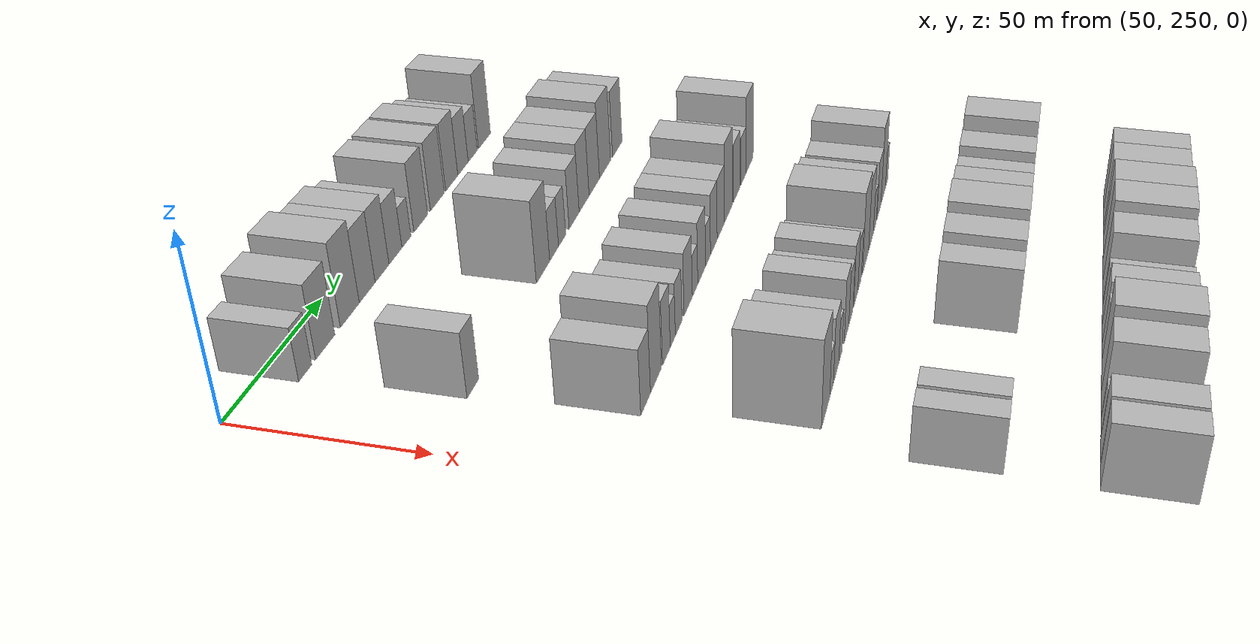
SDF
<sdf version="1.6">
 <world name="default">
  <model name="building_105">
   <static>1</static>
   <pose>50.0000 270.8013 0 0.000000 0.000000 0.000000</pose>
   <link name="link">
    <pose>0 0 7.50 0 0 0</pose>
    <collision name="collision"><geometry><box><size>20.0000 6.6210 15.0000</size></box></geometry></collision>
    <visual name="visual">
     <cast_shadows>0</cast_shadows>
     <geometry><box><size>20.0000 6.6210 15.0000</size></box></geometry>
     <material>
      <script>
       <uri>model://HANNAS_wall/materials/scripts</uri>
       <uri>model://HANNAS_wall/materials/textures</uri>
       <name>vrc/HANNAS_wall</name>
      </script>
     </material>
    </visual>
   </link>
  </model>
  <model name="building_106">
   <static>1</static>
   <pose>50.0000 281.2598 0 0.000000 0.000000 0.000000</pose>
   <link name="link">
    <pose>0 0 10.50 0 0 0</pose>
    <collision name="collision"><geometry><box><size>20.0000 10.2959 21.0000</size></box></geometry></collision>
    <visual name="visual">
     <cast_shadows>0</cast_shadows>
     <geometry><box><size>20.0000 10.2959 21.0000</size></box></geometry>
     <material>
      <script>
       <uri>model://HANNAS_wall/materials/scripts</uri>
       <uri>model://HANNAS_wall/materials/textures</uri>
       <name>vrc/HANNAS_wall</name>
      </script>
     </material>
    </visual>
   </link>
  </model>
  <model name="building_107">
   <static>1</static>
   <pose>50.0000 294.7778 0 0.000000 0.000000 0.000000</pose>
   <link name="link">
    <pose>0 0 12.00 0 0 0</pose>
    <collision name="collision"><geometry><box><size>20.0000 10.7402 24.0000</size></box></geometry></collision>
    <visual name="visual">
     <cast_shadows>0</cast_shadows>
     <geometry><box><size>20.0000 10.7402 24.0000</size></box></geometry>
     <material>
      <script>
       <uri>model://HANNAS_wall/materials/scripts</uri>
       <uri>model://HANNAS_wall/materials/textures</uri>
       <name>vrc/HANNAS_wall</name>
      </script>
     </material>
    </visual>
   </link>
  </model>
  <model name="building_108">
   <static>1</static>
   <pose>50.0000 304.8443 0 0.000000 0.000000 0.000000</pose>
   <link name="link">
    <pose>0 0 10.50 0 0 0</pose>
    <collision name="collision"><geometry><box><size>20.0000 9.3929 21.0000</size></box></geometry></collision>
    <visual name="visual">
     <cast_shadows>0</cast_shadows>
     <geometry><box><size>20.0000 9.3929 21.0000</size></box></geometry>
     <material>
      <script>
       <uri>model://HANNAS_wall/materials/scripts</uri>
       <uri>model://HANNAS_wall/materials/textures</uri>
       <name>vrc/HANNAS_wall</name>
      </script>
     </material>
    </visual>
   </link>
  </model>
  <model name="building_109">
   <static>1</static>
   <pose>50.0000 313.8432 0 0.000000 0.000000 0.000000</pose>
   <link name="link">
    <pose>0 0 10.50 0 0 0</pose>
    <collision name="collision"><geometry><box><size>20.0000 8.6049 21.0000</size></box></geometry></collision>
    <visual name="visual">
     <cast_shadows>0</cast_shadows>
     <geometry><box><size>20.0000 8.6049 21.0000</size></box></geometry>
     <material>
      <script>
       <uri>model://HANNAS_wall/materials/scripts</uri>
       <uri>model://HANNAS_wall/materials/textures</uri>
       <name>vrc/HANNAS_wall</name>
      </script>
     </material>
    </visual>
   </link>
  </model>
  <model name="building_110">
   <static>1</static>
   <pose>50.0000 322.2952 0 0.000000 0.000000 0.000000</pose>
   <link name="link">
    <pose>0 0 9.00 0 0 0</pose>
    <collision name="collision"><geometry><box><size>20.0000 8.2990 18.0000</size></box></geometry></collision>
    <visual name="visual">
     <cast_shadows>0</cast_shadows>
     <geometry><box><size>20.0000 8.2990 18.0000</size></box></geometry>
     <material>
      <script>
       <uri>model://HANNAS_wall/materials/scripts</uri>
       <uri>model://HANNAS_wall/materials/textures</uri>
       <name>vrc/HANNAS_wall</name>
      </script>
     </material>
    </visual>
   </link>
  </model>
  <model name="building_111">
   <static>1</static>
   <pose>50.0000 329.4036 0 0.000000 0.000000 0.000000</pose>
   <link name="link">
    <pose>0 0 6.00 0 0 0</pose>
    <collision name="collision"><geometry><box><size>20.0000 5.9179 12.0000</size></box></geometry></collision>
    <visual name="visual">
     <cast_shadows>0</cast_shadows>
     <geometry><box><size>20.0000 5.9179 12.0000</size></box></geometry>
     <material>
      <script>
       <uri>model://HANNAS_wall/materials/scripts</uri>
       <uri>model://HANNAS_wall/materials/textures</uri>
       <name>vrc/HANNAS_wall</name>
      </script>
     </material>
    </visual>
   </link>
  </model>
  <model name="building_112">
   <static>1</static>
   <pose>50.0000 339.0854 0 0.000000 0.000000 0.000000</pose>
   <link name="link">
    <pose>0 0 10.50 0 0 0</pose>
    <collision name="collision"><geometry><box><size>20.0000 9.4457 21.0000</size></box></geometry></collision>
    <visual name="visual">
     <cast_shadows>0</cast_shadows>
     <geometry><box><size>20.0000 9.4457 21.0000</size></box></geometry>
     <material>
      <script>
       <uri>model://HANNAS_wall/materials/scripts</uri>
       <uri>model://HANNAS_wall/materials/textures</uri>
       <name>vrc/HANNAS_wall</name>
      </script>
     </material>
    </visual>
   </link>
  </model>
  <model name="building_113">
   <static>1</static>
   <pose>50.0000 350.8341 0 0.000000 0.000000 0.000000</pose>
   <link name="link">
    <pose>0 0 10.50 0 0 0</pose>
    <collision name="collision"><geometry><box><size>20.0000 10.0517 21.0000</size></box></geometry></collision>
    <visual name="visual">
     <cast_shadows>0</cast_shadows>
     <geometry><box><size>20.0000 10.0517 21.0000</size></box></geometry>
     <material>
      <script>
       <uri>model://HANNAS_wall/materials/scripts</uri>
       <uri>model://HANNAS_wall/materials/textures</uri>
       <name>vrc/HANNAS_wall</name>
      </script>
     </material>
    </visual>
   </link>
  </model>
  <model name="building_114">
   <static>1</static>
   <pose>50.0000 361.4391 0 0.000000 0.000000 0.000000</pose>
   <link name="link">
    <pose>0 0 10.50 0 0 0</pose>
    <collision name="collision"><geometry><box><size>20.0000 9.1581 21.0000</size></box></geometry></collision>
    <visual name="visual">
     <cast_shadows>0</cast_shadows>
     <geometry><box><size>20.0000 9.1581 21.0000</size></box></geometry>
     <material>
      <script>
       <uri>model://HANNAS_wall/materials/scripts</uri>
       <uri>model://HANNAS_wall/materials/textures</uri>
       <name>vrc/HANNAS_wall</name>
      </script>
     </material>
    </visual>
   </link>
  </model>
  <model name="building_115">
   <static>1</static>
   <pose>50.0000 370.0794 0 0.000000 0.000000 0.000000</pose>
   <link name="link">
    <pose>0 0 9.00 0 0 0</pose>
    <collision name="collision"><geometry><box><size>20.0000 8.1225 18.0000</size></box></geometry></collision>
    <visual name="visual">
     <cast_shadows>0</cast_shadows>
     <geometry><box><size>20.0000 8.1225 18.0000</size></box></geometry>
     <material>
      <script>
       <uri>model://HANNAS_wall/materials/scripts</uri>
       <uri>model://HANNAS_wall/materials/textures</uri>
       <name>vrc/HANNAS_wall</name>
      </script>
     </material>
    </visual>
   </link>
  </model>
  <model name="building_116">
   <static>1</static>
   <pose>50.0000 377.7394 0 0.000000 0.000000 0.000000</pose>
   <link name="link">
    <pose>0 0 7.50 0 0 0</pose>
    <collision name="collision"><geometry><box><size>20.0000 7.1975 15.0000</size></box></geometry></collision>
    <visual name="visual">
     <cast_shadows>0</cast_shadows>
     <geometry><box><size>20.0000 7.1975 15.0000</size></box></geometry>
     <material>
      <script>
       <uri>model://HANNAS_wall/materials/scripts</uri>
       <uri>model://HANNAS_wall/materials/textures</uri>
       <name>vrc/HANNAS_wall</name>
      </script>
     </material>
    </visual>
   </link>
  </model>
  <model name="building_117">
   <static>1</static>
   <pose>50.0000 387.3752 0 0.000000 0.000000 0.000000</pose>
   <link name="link">
    <pose>0 0 12.00 0 0 0</pose>
    <collision name="collision"><geometry><box><size>20.0000 10.0742 24.0000</size></box></geometry></collision>
    <visual name="visual">
     <cast_shadows>0</cast_shadows>
     <geometry><box><size>20.0000 10.0742 24.0000</size></box></geometry>
     <material>
      <script>
       <uri>model://HANNAS_wall/materials/scripts</uri>
       <uri>model://HANNAS_wall/materials/textures</uri>
       <name>vrc/HANNAS_wall</name>
      </script>
     </material>
    </visual>
   </link>
  </model>
  <model name="building_230">
   <static>1</static>
   <pose>90.0000 273.5244 0 0.000000 0.000000 0.000000</pose>
   <link name="link">
    <pose>0 0 9.00 0 0 0</pose>
    <collision name="collision"><geometry><box><size>20.0000 7.3541 18.0000</size></box></geometry></collision>
    <visual name="visual">
     <cast_shadows>0</cast_shadows>
     <geometry><box><size>20.0000 7.3541 18.0000</size></box></geometry>
     <material>
      <script>
       <uri>model://HANNAS_wall/materials/scripts</uri>
       <uri>model://HANNAS_wall/materials/textures</uri>
       <name>vrc/HANNAS_wall</name>
      </script>
     </material>
    </visual>
   </link>
  </model>
  <model name="building_231">
   <static>1</static>
   <pose>90.0000 323.1461 0 0.000000 0.000000 0.000000</pose>
   <link name="link">
    <pose>0 0 12.00 0 0 0</pose>
    <collision name="collision"><geometry><box><size>20.0000 10.6297 24.0000</size></box></geometry></collision>
    <visual name="visual">
     <cast_shadows>0</cast_shadows>
     <geometry><box><size>20.0000 10.6297 24.0000</size></box></geometry>
     <material>
      <script>
       <uri>model://HANNAS_wall/materials/scripts</uri>
       <uri>model://HANNAS_wall/materials/textures</uri>
       <name>vrc/HANNAS_wall</name>
      </script>
     </material>
    </visual>
   </link>
  </model>
  <model name="building_232">
   <static>1</static>
   <pose>90.0000 332.1004 0 0.000000 0.000000 0.000000</pose>
   <link name="link">
    <pose>0 0 7.50 0 0 0</pose>
    <collision name="collision"><geometry><box><size>20.0000 7.2789 15.0000</size></box></geometry></collision>
    <visual name="visual">
     <cast_shadows>0</cast_shadows>
     <geometry><box><size>20.0000 7.2789 15.0000</size></box></geometry>
     <material>
      <script>
       <uri>model://HANNAS_wall/materials/scripts</uri>
       <uri>model://HANNAS_wall/materials/textures</uri>
       <name>vrc/HANNAS_wall</name>
      </script>
     </material>
    </visual>
   </link>
  </model>
  <model name="building_233">
   <static>1</static>
   <pose>90.0000 338.7632 0 0.000000 0.000000 0.000000</pose>
   <link name="link">
    <pose>0 0 7.50 0 0 0</pose>
    <collision name="collision"><geometry><box><size>20.0000 6.0467 15.0000</size></box></geometry></collision>
    <visual name="visual">
     <cast_shadows>0</cast_shadows>
     <geometry><box><size>20.0000 6.0467 15.0000</size></box></geometry>
     <material>
      <script>
       <uri>model://HANNAS_wall/materials/scripts</uri>
       <uri>model://HANNAS_wall/materials/textures</uri>
       <name>vrc/HANNAS_wall</name>
      </script>
     </material>
    </visual>
   </link>
  </model>
  <model name="building_234">
   <static>1</static>
   <pose>90.0000 349.2207 0 0.000000 0.000000 0.000000</pose>
   <link name="link">
    <pose>0 0 9.00 0 0 0</pose>
    <collision name="collision"><geometry><box><size>20.0000 8.8682 18.0000</size></box></geometry></collision>
    <visual name="visual">
     <cast_shadows>0</cast_shadows>
     <geometry><box><size>20.0000 8.8682 18.0000</size></box></geometry>
     <material>
      <script>
       <uri>model://HANNAS_wall/materials/scripts</uri>
       <uri>model://HANNAS_wall/materials/textures</uri>
       <name>vrc/HANNAS_wall</name>
      </script>
     </material>
    </visual>
   </link>
  </model>
  <model name="building_235">
   <static>1</static>
   <pose>90.0000 358.2256 0 0.000000 0.000000 0.000000</pose>
   <link name="link">
    <pose>0 0 10.50 0 0 0</pose>
    <collision name="collision"><geometry><box><size>20.0000 9.1416 21.0000</size></box></geometry></collision>
    <visual name="visual">
     <cast_shadows>0</cast_shadows>
     <geometry><box><size>20.0000 9.1416 21.0000</size></box></geometry>
     <material>
      <script>
       <uri>model://HANNAS_wall/materials/scripts</uri>
       <uri>model://HANNAS_wall/materials/textures</uri>
       <name>vrc/HANNAS_wall</name>
      </script>
     </material>
    </visual>
   </link>
  </model>
  <model name="building_236">
   <static>1</static>
   <pose>90.0000 367.7787 0 0.000000 0.000000 0.000000</pose>
   <link name="link">
    <pose>0 0 10.50 0 0 0</pose>
    <collision name="collision"><geometry><box><size>20.0000 9.9645 21.0000</size></box></geometry></collision>
    <visual name="visual">
     <cast_shadows>0</cast_shadows>
     <geometry><box><size>20.0000 9.9645 21.0000</size></box></geometry>
     <material>
      <script>
       <uri>model://HANNAS_wall/materials/scripts</uri>
       <uri>model://HANNAS_wall/materials/textures</uri>
       <name>vrc/HANNAS_wall</name>
      </script>
     </material>
    </visual>
   </link>
  </model>
  <model name="building_237">
   <static>1</static>
   <pose>90.0000 378.2709 0 0.000000 0.000000 0.000000</pose>
   <link name="link">
    <pose>0 0 12.00 0 0 0</pose>
    <collision name="collision"><geometry><box><size>20.0000 11.0199 24.0000</size></box></geometry></collision>
    <visual name="visual">
     <cast_shadows>0</cast_shadows>
     <geometry><box><size>20.0000 11.0199 24.0000</size></box></geometry>
     <material>
      <script>
       <uri>model://HANNAS_wall/materials/scripts</uri>
       <uri>model://HANNAS_wall/materials/textures</uri>
       <name>vrc/HANNAS_wall</name>
      </script>
     </material>
    </visual>
   </link>
  </model>
  <model name="building_238">
   <static>1</static>
   <pose>90.0000 390.7576 0 0.000000 0.000000 0.000000</pose>
   <link name="link">
    <pose>0 0 10.50 0 0 0</pose>
    <collision name="collision"><geometry><box><size>20.0000 9.9534 21.0000</size></box></geometry></collision>
    <visual name="visual">
     <cast_shadows>0</cast_shadows>
     <geometry><box><size>20.0000 9.9534 21.0000</size></box></geometry>
     <material>
      <script>
       <uri>model://HANNAS_wall/materials/scripts</uri>
       <uri>model://HANNAS_wall/materials/textures</uri>
       <name>vrc/HANNAS_wall</name>
      </script>
     </material>
    </visual>
   </link>
  </model>
  <model name="building_358">
   <static>1</static>
   <pose>130.0000 276.2839 0 0.000000 0.000000 0.000000</pose>
   <link name="link">
    <pose>0 0 9.00 0 0 0</pose>
    <collision name="collision"><geometry><box><size>20.0000 8.2934 18.0000</size></box></geometry></collision>
    <visual name="visual">
     <cast_shadows>0</cast_shadows>
     <geometry><box><size>20.0000 8.2934 18.0000</size></box></geometry>
     <material>
      <script>
       <uri>model://HANNAS_wall/materials/scripts</uri>
       <uri>model://HANNAS_wall/materials/textures</uri>
       <name>vrc/HANNAS_wall</name>
      </script>
     </material>
    </visual>
   </link>
  </model>
  <model name="building_359">
   <static>1</static>
   <pose>130.0000 285.2627 0 0.000000 0.000000 0.000000</pose>
   <link name="link">
    <pose>0 0 12.00 0 0 0</pose>
    <collision name="collision"><geometry><box><size>20.0000 9.6642 24.0000</size></box></geometry></collision>
    <visual name="visual">
     <cast_shadows>0</cast_shadows>
     <geometry><box><size>20.0000 9.6642 24.0000</size></box></geometry>
     <material>
      <script>
       <uri>model://HANNAS_wall/materials/scripts</uri>
       <uri>model://HANNAS_wall/materials/textures</uri>
       <name>vrc/HANNAS_wall</name>
      </script>
     </material>
    </visual>
   </link>
  </model>
  <model name="building_360">
   <static>1</static>
   <pose>130.0000 294.7031 0 0.000000 0.000000 0.000000</pose>
   <link name="link">
    <pose>0 0 9.00 0 0 0</pose>
    <collision name="collision"><geometry><box><size>20.0000 7.2167 18.0000</size></box></geometry></collision>
    <visual name="visual">
     <cast_shadows>0</cast_shadows>
     <geometry><box><size>20.0000 7.2167 18.0000</size></box></geometry>
     <material>
      <script>
       <uri>model://HANNAS_wall/materials/scripts</uri>
       <uri>model://HANNAS_wall/materials/textures</uri>
       <name>vrc/HANNAS_wall</name>
      </script>
     </material>
    </visual>
   </link>
  </model>
  <model name="building_361">
   <static>1</static>
   <pose>130.0000 300.7441 0 0.000000 0.000000 0.000000</pose>
   <link name="link">
    <pose>0 0 6.00 0 0 0</pose>
    <collision name="collision"><geometry><box><size>20.0000 4.8653 12.0000</size></box></geometry></collision>
    <visual name="visual">
     <cast_shadows>0</cast_shadows>
     <geometry><box><size>20.0000 4.8653 12.0000</size></box></geometry>
     <material>
      <script>
       <uri>model://HANNAS_wall/materials/scripts</uri>
       <uri>model://HANNAS_wall/materials/textures</uri>
       <name>vrc/HANNAS_wall</name>
      </script>
     </material>
    </visual>
   </link>
  </model>
  <model name="building_362">
   <static>1</static>
   <pose>130.0000 306.4596 0 0.000000 0.000000 0.000000</pose>
   <link name="link">
    <pose>0 0 7.50 0 0 0</pose>
    <collision name="collision"><geometry><box><size>20.0000 6.5658 15.0000</size></box></geometry></collision>
    <visual name="visual">
     <cast_shadows>0</cast_shadows>
     <geometry><box><size>20.0000 6.5658 15.0000</size></box></geometry>
     <material>
      <script>
       <uri>model://HANNAS_wall/materials/scripts</uri>
       <uri>model://HANNAS_wall/materials/textures</uri>
       <name>vrc/HANNAS_wall</name>
      </script>
     </material>
    </visual>
   </link>
  </model>
  <model name="building_363">
   <static>1</static>
   <pose>130.0000 316.0004 0 0.000000 0.000000 0.000000</pose>
   <link name="link">
    <pose>0 0 9.00 0 0 0</pose>
    <collision name="collision"><geometry><box><size>20.0000 8.5158 18.0000</size></box></geometry></collision>
    <visual name="visual">
     <cast_shadows>0</cast_shadows>
     <geometry><box><size>20.0000 8.5158 18.0000</size></box></geometry>
     <material>
      <script>
       <uri>model://HANNAS_wall/materials/scripts</uri>
       <uri>model://HANNAS_wall/materials/textures</uri>
       <name>vrc/HANNAS_wall</name>
      </script>
     </material>
    </visual>
   </link>
  </model>
  <model name="building_364">
   <static>1</static>
   <pose>130.0000 323.1467 0 0.000000 0.000000 0.000000</pose>
   <link name="link">
    <pose>0 0 6.00 0 0 0</pose>
    <collision name="collision"><geometry><box><size>20.0000 5.7768 12.0000</size></box></geometry></collision>
    <visual name="visual">
     <cast_shadows>0</cast_shadows>
     <geometry><box><size>20.0000 5.7768 12.0000</size></box></geometry>
     <material>
      <script>
       <uri>model://HANNAS_wall/materials/scripts</uri>
       <uri>model://HANNAS_wall/materials/textures</uri>
       <name>vrc/HANNAS_wall</name>
      </script>
     </material>
    </visual>
   </link>
  </model>
  <model name="building_365">
   <static>1</static>
   <pose>130.0000 330.3288 0 0.000000 0.000000 0.000000</pose>
   <link name="link">
    <pose>0 0 9.00 0 0 0</pose>
    <collision name="collision"><geometry><box><size>20.0000 8.5874 18.0000</size></box></geometry></collision>
    <visual name="visual">
     <cast_shadows>0</cast_shadows>
     <geometry><box><size>20.0000 8.5874 18.0000</size></box></geometry>
     <material>
      <script>
       <uri>model://HANNAS_wall/materials/scripts</uri>
       <uri>model://HANNAS_wall/materials/textures</uri>
       <name>vrc/HANNAS_wall</name>
      </script>
     </material>
    </visual>
   </link>
  </model>
  <model name="building_366">
   <static>1</static>
   <pose>130.0000 337.3484 0 0.000000 0.000000 0.000000</pose>
   <link name="link">
    <pose>0 0 6.00 0 0 0</pose>
    <collision name="collision"><geometry><box><size>20.0000 5.4519 12.0000</size></box></geometry></collision>
    <visual name="visual">
     <cast_shadows>0</cast_shadows>
     <geometry><box><size>20.0000 5.4519 12.0000</size></box></geometry>
     <material>
      <script>
       <uri>model://HANNAS_wall/materials/scripts</uri>
       <uri>model://HANNAS_wall/materials/textures</uri>
       <name>vrc/HANNAS_wall</name>
      </script>
     </material>
    </visual>
   </link>
  </model>
  <model name="building_367">
   <static>1</static>
   <pose>130.0000 343.9395 0 0.000000 0.000000 0.000000</pose>
   <link name="link">
    <pose>0 0 9.00 0 0 0</pose>
    <collision name="collision"><geometry><box><size>20.0000 7.7302 18.0000</size></box></geometry></collision>
    <visual name="visual">
     <cast_shadows>0</cast_shadows>
     <geometry><box><size>20.0000 7.7302 18.0000</size></box></geometry>
     <material>
      <script>
       <uri>model://HANNAS_wall/materials/scripts</uri>
       <uri>model://HANNAS_wall/materials/textures</uri>
       <name>vrc/HANNAS_wall</name>
      </script>
     </material>
    </visual>
   </link>
  </model>
  <model name="building_368">
   <static>1</static>
   <pose>130.0000 352.1673 0 0.000000 0.000000 0.000000</pose>
   <link name="link">
    <pose>0 0 9.00 0 0 0</pose>
    <collision name="collision"><geometry><box><size>20.0000 8.7255 18.0000</size></box></geometry></collision>
    <visual name="visual">
     <cast_shadows>0</cast_shadows>
     <geometry><box><size>20.0000 8.7255 18.0000</size></box></geometry>
     <material>
      <script>
       <uri>model://HANNAS_wall/materials/scripts</uri>
       <uri>model://HANNAS_wall/materials/textures</uri>
       <name>vrc/HANNAS_wall</name>
      </script>
     </material>
    </visual>
   </link>
  </model>
  <model name="building_369">
   <static>1</static>
   <pose>130.0000 361.6345 0 0.000000 0.000000 0.000000</pose>
   <link name="link">
    <pose>0 0 12.00 0 0 0</pose>
    <collision name="collision"><geometry><box><size>20.0000 10.2089 24.0000</size></box></geometry></collision>
    <visual name="visual">
     <cast_shadows>0</cast_shadows>
     <geometry><box><size>20.0000 10.2089 24.0000</size></box></geometry>
     <material>
      <script>
       <uri>model://HANNAS_wall/materials/scripts</uri>
       <uri>model://HANNAS_wall/materials/textures</uri>
       <name>vrc/HANNAS_wall</name>
      </script>
     </material>
    </visual>
   </link>
  </model>
  <model name="building_370">
   <static>1</static>
   <pose>130.0000 372.1409 0 0.000000 0.000000 0.000000</pose>
   <link name="link">
    <pose>0 0 9.00 0 0 0</pose>
    <collision name="collision"><geometry><box><size>20.0000 8.8039 18.0000</size></box></geometry></collision>
    <visual name="visual">
     <cast_shadows>0</cast_shadows>
     <geometry><box><size>20.0000 8.8039 18.0000</size></box></geometry>
     <material>
      <script>
       <uri>model://HANNAS_wall/materials/scripts</uri>
       <uri>model://HANNAS_wall/materials/textures</uri>
       <name>vrc/HANNAS_wall</name>
      </script>
     </material>
    </visual>
   </link>
  </model>
  <model name="building_371">
   <static>1</static>
   <pose>130.0000 381.1409 0 0.000000 0.000000 0.000000</pose>
   <link name="link">
    <pose>0 0 7.50 0 0 0</pose>
    <collision name="collision"><geometry><box><size>20.0000 7.1962 15.0000</size></box></geometry></collision>
    <visual name="visual">
     <cast_shadows>0</cast_shadows>
     <geometry><box><size>20.0000 7.1962 15.0000</size></box></geometry>
     <material>
      <script>
       <uri>model://HANNAS_wall/materials/scripts</uri>
       <uri>model://HANNAS_wall/materials/textures</uri>
       <name>vrc/HANNAS_wall</name>
      </script>
     </material>
    </visual>
   </link>
  </model>
  <model name="building_372">
   <static>1</static>
   <pose>130.0000 389.6040 0 0.000000 0.000000 0.000000</pose>
   <link name="link">
    <pose>0 0 12.00 0 0 0</pose>
    <collision name="collision"><geometry><box><size>20.0000 9.7300 24.0000</size></box></geometry></collision>
    <visual name="visual">
     <cast_shadows>0</cast_shadows>
     <geometry><box><size>20.0000 9.7300 24.0000</size></box></geometry>
     <material>
      <script>
       <uri>model://HANNAS_wall/materials/scripts</uri>
       <uri>model://HANNAS_wall/materials/textures</uri>
       <name>vrc/HANNAS_wall</name>
      </script>
     </material>
    </visual>
   </link>
  </model>
  <model name="building_506">
   <static>1</static>
   <pose>170.0000 281.7472 0 0.000000 0.000000 0.000000</pose>
   <link name="link">
    <pose>0 0 12.00 0 0 0</pose>
    <collision name="collision"><geometry><box><size>20.0000 11.4408 24.0000</size></box></geometry></collision>
    <visual name="visual">
     <cast_shadows>0</cast_shadows>
     <geometry><box><size>20.0000 11.4408 24.0000</size></box></geometry>
     <material>
      <script>
       <uri>model://HANNAS_wall/materials/scripts</uri>
       <uri>model://HANNAS_wall/materials/textures</uri>
       <name>vrc/HANNAS_wall</name>
      </script>
     </material>
    </visual>
   </link>
  </model>
  <model name="building_507">
   <static>1</static>
   <pose>170.0000 290.0854 0 0.000000 0.000000 0.000000</pose>
   <link name="link">
    <pose>0 0 6.00 0 0 0</pose>
    <collision name="collision"><geometry><box><size>20.0000 5.2356 12.0000</size></box></geometry></collision>
    <visual name="visual">
     <cast_shadows>0</cast_shadows>
     <geometry><box><size>20.0000 5.2356 12.0000</size></box></geometry>
     <material>
      <script>
       <uri>model://HANNAS_wall/materials/scripts</uri>
       <uri>model://HANNAS_wall/materials/textures</uri>
       <name>vrc/HANNAS_wall</name>
      </script>
     </material>
    </visual>
   </link>
  </model>
  <model name="building_508">
   <static>1</static>
   <pose>170.0000 296.6330 0 0.000000 0.000000 0.000000</pose>
   <link name="link">
    <pose>0 0 9.00 0 0 0</pose>
    <collision name="collision"><geometry><box><size>20.0000 7.8597 18.0000</size></box></geometry></collision>
    <visual name="visual">
     <cast_shadows>0</cast_shadows>
     <geometry><box><size>20.0000 7.8597 18.0000</size></box></geometry>
     <material>
      <script>
       <uri>model://HANNAS_wall/materials/scripts</uri>
       <uri>model://HANNAS_wall/materials/textures</uri>
       <name>vrc/HANNAS_wall</name>
      </script>
     </material>
    </visual>
   </link>
  </model>
  <model name="building_509">
   <static>1</static>
   <pose>170.0000 303.1570 0 0.000000 0.000000 0.000000</pose>
   <link name="link">
    <pose>0 0 6.00 0 0 0</pose>
    <collision name="collision"><geometry><box><size>20.0000 5.1882 12.0000</size></box></geometry></collision>
    <visual name="visual">
     <cast_shadows>0</cast_shadows>
     <geometry><box><size>20.0000 5.1882 12.0000</size></box></geometry>
     <material>
      <script>
       <uri>model://HANNAS_wall/materials/scripts</uri>
       <uri>model://HANNAS_wall/materials/textures</uri>
       <name>vrc/HANNAS_wall</name>
      </script>
     </material>
    </visual>
   </link>
  </model>
  <model name="building_510">
   <static>1</static>
   <pose>170.0000 312.4642 0 0.000000 0.000000 0.000000</pose>
   <link name="link">
    <pose>0 0 9.00 0 0 0</pose>
    <collision name="collision"><geometry><box><size>20.0000 7.4262 18.0000</size></box></geometry></collision>
    <visual name="visual">
     <cast_shadows>0</cast_shadows>
     <geometry><box><size>20.0000 7.4262 18.0000</size></box></geometry>
     <material>
      <script>
       <uri>model://HANNAS_wall/materials/scripts</uri>
       <uri>model://HANNAS_wall/materials/textures</uri>
       <name>vrc/HANNAS_wall</name>
      </script>
     </material>
    </visual>
   </link>
  </model>
  <model name="building_511">
   <static>1</static>
   <pose>170.0000 319.4989 0 0.000000 0.000000 0.000000</pose>
   <link name="link">
    <pose>0 0 7.50 0 0 0</pose>
    <collision name="collision"><geometry><box><size>20.0000 6.6430 15.0000</size></box></geometry></collision>
    <visual name="visual">
     <cast_shadows>0</cast_shadows>
     <geometry><box><size>20.0000 6.6430 15.0000</size></box></geometry>
     <material>
      <script>
       <uri>model://HANNAS_wall/materials/scripts</uri>
       <uri>model://HANNAS_wall/materials/textures</uri>
       <name>vrc/HANNAS_wall</name>
      </script>
     </material>
    </visual>
   </link>
  </model>
  <model name="building_512">
   <static>1</static>
   <pose>170.0000 327.4768 0 0.000000 0.000000 0.000000</pose>
   <link name="link">
    <pose>0 0 9.00 0 0 0</pose>
    <collision name="collision"><geometry><box><size>20.0000 7.3129 18.0000</size></box></geometry></collision>
    <visual name="visual">
     <cast_shadows>0</cast_shadows>
     <geometry><box><size>20.0000 7.3129 18.0000</size></box></geometry>
     <material>
      <script>
       <uri>model://HANNAS_wall/materials/scripts</uri>
       <uri>model://HANNAS_wall/materials/textures</uri>
       <name>vrc/HANNAS_wall</name>
      </script>
     </material>
    </visual>
   </link>
  </model>
  <model name="building_513">
   <static>1</static>
   <pose>170.0000 334.1454 0 0.000000 0.000000 0.000000</pose>
   <link name="link">
    <pose>0 0 7.50 0 0 0</pose>
    <collision name="collision"><geometry><box><size>20.0000 6.0243 15.0000</size></box></geometry></collision>
    <visual name="visual">
     <cast_shadows>0</cast_shadows>
     <geometry><box><size>20.0000 6.0243 15.0000</size></box></geometry>
     <material>
      <script>
       <uri>model://HANNAS_wall/materials/scripts</uri>
       <uri>model://HANNAS_wall/materials/textures</uri>
       <name>vrc/HANNAS_wall</name>
      </script>
     </material>
    </visual>
   </link>
  </model>
  <model name="building_514">
   <static>1</static>
   <pose>170.0000 344.7947 0 0.000000 0.000000 0.000000</pose>
   <link name="link">
    <pose>0 0 12.00 0 0 0</pose>
    <collision name="collision"><geometry><box><size>20.0000 11.2744 24.0000</size></box></geometry></collision>
    <visual name="visual">
     <cast_shadows>0</cast_shadows>
     <geometry><box><size>20.0000 11.2744 24.0000</size></box></geometry>
     <material>
      <script>
       <uri>model://HANNAS_wall/materials/scripts</uri>
       <uri>model://HANNAS_wall/materials/textures</uri>
       <name>vrc/HANNAS_wall</name>
      </script>
     </material>
    </visual>
   </link>
  </model>
  <model name="building_515">
   <static>1</static>
   <pose>170.0000 355.0708 0 0.000000 0.000000 0.000000</pose>
   <link name="link">
    <pose>0 0 10.50 0 0 0</pose>
    <collision name="collision"><geometry><box><size>20.0000 9.2777 21.0000</size></box></geometry></collision>
    <visual name="visual">
     <cast_shadows>0</cast_shadows>
     <geometry><box><size>20.0000 9.2777 21.0000</size></box></geometry>
     <material>
      <script>
       <uri>model://HANNAS_wall/materials/scripts</uri>
       <uri>model://HANNAS_wall/materials/textures</uri>
       <name>vrc/HANNAS_wall</name>
      </script>
     </material>
    </visual>
   </link>
  </model>
  <model name="building_516">
   <static>1</static>
   <pose>170.0000 362.5724 0 0.000000 0.000000 0.000000</pose>
   <link name="link">
    <pose>0 0 6.00 0 0 0</pose>
    <collision name="collision"><geometry><box><size>20.0000 5.7255 12.0000</size></box></geometry></collision>
    <visual name="visual">
     <cast_shadows>0</cast_shadows>
     <geometry><box><size>20.0000 5.7255 12.0000</size></box></geometry>
     <material>
      <script>
       <uri>model://HANNAS_wall/materials/scripts</uri>
       <uri>model://HANNAS_wall/materials/textures</uri>
       <name>vrc/HANNAS_wall</name>
      </script>
     </material>
    </visual>
   </link>
  </model>
  <model name="building_517">
   <static>1</static>
   <pose>170.0000 370.6981 0 0.000000 0.000000 0.000000</pose>
   <link name="link">
    <pose>0 0 9.00 0 0 0</pose>
    <collision name="collision"><geometry><box><size>20.0000 8.5259 18.0000</size></box></geometry></collision>
    <visual name="visual">
     <cast_shadows>0</cast_shadows>
     <geometry><box><size>20.0000 8.5259 18.0000</size></box></geometry>
     <material>
      <script>
       <uri>model://HANNAS_wall/materials/scripts</uri>
       <uri>model://HANNAS_wall/materials/textures</uri>
       <name>vrc/HANNAS_wall</name>
      </script>
     </material>
    </visual>
   </link>
  </model>
  <model name="building_518">
   <static>1</static>
   <pose>170.0000 379.7966 0 0.000000 0.000000 0.000000</pose>
   <link name="link">
    <pose>0 0 12.00 0 0 0</pose>
    <collision name="collision"><geometry><box><size>20.0000 9.6710 24.0000</size></box></geometry></collision>
    <visual name="visual">
     <cast_shadows>0</cast_shadows>
     <geometry><box><size>20.0000 9.6710 24.0000</size></box></geometry>
     <material>
      <script>
       <uri>model://HANNAS_wall/materials/scripts</uri>
       <uri>model://HANNAS_wall/materials/textures</uri>
       <name>vrc/HANNAS_wall</name>
      </script>
     </material>
    </visual>
   </link>
  </model>
  <model name="building_519">
   <static>1</static>
   <pose>170.0000 387.1900 0 0.000000 0.000000 0.000000</pose>
   <link name="link">
    <pose>0 0 6.00 0 0 0</pose>
    <collision name="collision"><geometry><box><size>20.0000 5.1159 12.0000</size></box></geometry></collision>
    <visual name="visual">
     <cast_shadows>0</cast_shadows>
     <geometry><box><size>20.0000 5.1159 12.0000</size></box></geometry>
     <material>
      <script>
       <uri>model://HANNAS_wall/materials/scripts</uri>
       <uri>model://HANNAS_wall/materials/textures</uri>
       <name>vrc/HANNAS_wall</name>
      </script>
     </material>
    </visual>
   </link>
  </model>
  <model name="building_642">
   <static>1</static>
   <pose>210.0000 272.5341 0 0.000000 0.000000 0.000000</pose>
   <link name="link">
    <pose>0 0 7.50 0 0 0</pose>
    <collision name="collision"><geometry><box><size>20.0000 6.4588 15.0000</size></box></geometry></collision>
    <visual name="visual">
     <cast_shadows>0</cast_shadows>
     <geometry><box><size>20.0000 6.4588 15.0000</size></box></geometry>
     <material>
      <script>
       <uri>model://HANNAS_wall/materials/scripts</uri>
       <uri>model://HANNAS_wall/materials/textures</uri>
       <name>vrc/HANNAS_wall</name>
      </script>
     </material>
    </visual>
   </link>
  </model>
  <model name="building_643">
   <static>1</static>
   <pose>210.0000 280.0712 0 0.000000 0.000000 0.000000</pose>
   <link name="link">
    <pose>0 0 7.50 0 0 0</pose>
    <collision name="collision"><geometry><box><size>20.0000 6.6154 15.0000</size></box></geometry></collision>
    <visual name="visual">
     <cast_shadows>0</cast_shadows>
     <geometry><box><size>20.0000 6.6154 15.0000</size></box></geometry>
     <material>
      <script>
       <uri>model://HANNAS_wall/materials/scripts</uri>
       <uri>model://HANNAS_wall/materials/textures</uri>
       <name>vrc/HANNAS_wall</name>
      </script>
     </material>
    </visual>
   </link>
  </model>
  <model name="building_644">
   <static>1</static>
   <pose>210.0000 325.9949 0 0.000000 0.000000 0.000000</pose>
   <link name="link">
    <pose>0 0 9.00 0 0 0</pose>
    <collision name="collision"><geometry><box><size>20.0000 8.4107 18.0000</size></box></geometry></collision>
    <visual name="visual">
     <cast_shadows>0</cast_shadows>
     <geometry><box><size>20.0000 8.4107 18.0000</size></box></geometry>
     <material>
      <script>
       <uri>model://HANNAS_wall/materials/scripts</uri>
       <uri>model://HANNAS_wall/materials/textures</uri>
       <name>vrc/HANNAS_wall</name>
      </script>
     </material>
    </visual>
   </link>
  </model>
  <model name="building_645">
   <static>1</static>
   <pose>210.0000 334.9636 0 0.000000 0.000000 0.000000</pose>
   <link name="link">
    <pose>0 0 10.50 0 0 0</pose>
    <collision name="collision"><geometry><box><size>20.0000 9.5267 21.0000</size></box></geometry></collision>
    <visual name="visual">
     <cast_shadows>0</cast_shadows>
     <geometry><box><size>20.0000 9.5267 21.0000</size></box></geometry>
     <material>
      <script>
       <uri>model://HANNAS_wall/materials/scripts</uri>
       <uri>model://HANNAS_wall/materials/textures</uri>
       <name>vrc/HANNAS_wall</name>
      </script>
     </material>
    </visual>
   </link>
  </model>
  <model name="building_646">
   <static>1</static>
   <pose>210.0000 345.5641 0 0.000000 0.000000 0.000000</pose>
   <link name="link">
    <pose>0 0 12.00 0 0 0</pose>
    <collision name="collision"><geometry><box><size>20.0000 11.6744 24.0000</size></box></geometry></collision>
    <visual name="visual">
     <cast_shadows>0</cast_shadows>
     <geometry><box><size>20.0000 11.6744 24.0000</size></box></geometry>
     <material>
      <script>
       <uri>model://HANNAS_wall/materials/scripts</uri>
       <uri>model://HANNAS_wall/materials/textures</uri>
       <name>vrc/HANNAS_wall</name>
      </script>
     </material>
    </visual>
   </link>
  </model>
  <model name="building_647">
   <static>1</static>
   <pose>210.0000 359.1137 0 0.000000 0.000000 0.000000</pose>
   <link name="link">
    <pose>0 0 10.50 0 0 0</pose>
    <collision name="collision"><geometry><box><size>20.0000 9.4248 21.0000</size></box></geometry></collision>
    <visual name="visual">
     <cast_shadows>0</cast_shadows>
     <geometry><box><size>20.0000 9.4248 21.0000</size></box></geometry>
     <material>
      <script>
       <uri>model://HANNAS_wall/materials/scripts</uri>
       <uri>model://HANNAS_wall/materials/textures</uri>
       <name>vrc/HANNAS_wall</name>
      </script>
     </material>
    </visual>
   </link>
  </model>
  <model name="building_648">
   <static>1</static>
   <pose>210.0000 370.3124 0 0.000000 0.000000 0.000000</pose>
   <link name="link">
    <pose>0 0 9.00 0 0 0</pose>
    <collision name="collision"><geometry><box><size>20.0000 8.9725 18.0000</size></box></geometry></collision>
    <visual name="visual">
     <cast_shadows>0</cast_shadows>
     <geometry><box><size>20.0000 8.9725 18.0000</size></box></geometry>
     <material>
      <script>
       <uri>model://HANNAS_wall/materials/scripts</uri>
       <uri>model://HANNAS_wall/materials/textures</uri>
       <name>vrc/HANNAS_wall</name>
      </script>
     </material>
    </visual>
   </link>
  </model>
  <model name="building_649">
   <static>1</static>
   <pose>210.0000 379.4352 0 0.000000 0.000000 0.000000</pose>
   <link name="link">
    <pose>0 0 10.50 0 0 0</pose>
    <collision name="collision"><geometry><box><size>20.0000 9.2731 21.0000</size></box></geometry></collision>
    <visual name="visual">
     <cast_shadows>0</cast_shadows>
     <geometry><box><size>20.0000 9.2731 21.0000</size></box></geometry>
     <material>
      <script>
       <uri>model://HANNAS_wall/materials/scripts</uri>
       <uri>model://HANNAS_wall/materials/textures</uri>
       <name>vrc/HANNAS_wall</name>
      </script>
     </material>
    </visual>
   </link>
  </model>
  <model name="building_650">
   <static>1</static>
   <pose>210.0000 392.9387 0 0.000000 0.000000 0.000000</pose>
   <link name="link">
    <pose>0 0 12.00 0 0 0</pose>
    <collision name="collision"><geometry><box><size>20.0000 11.7338 24.0000</size></box></geometry></collision>
    <visual name="visual">
     <cast_shadows>0</cast_shadows>
     <geometry><box><size>20.0000 11.7338 24.0000</size></box></geometry>
     <material>
      <script>
       <uri>model://HANNAS_wall/materials/scripts</uri>
       <uri>model://HANNAS_wall/materials/textures</uri>
       <name>vrc/HANNAS_wall</name>
      </script>
     </material>
    </visual>
   </link>
  </model>
  <model name="building_777">
   <static>1</static>
   <pose>250.0000 272.4502 0 0.000000 0.000000 0.000000</pose>
   <link name="link">
    <pose>0 0 9.00 0 0 0</pose>
    <collision name="collision"><geometry><box><size>20.0000 7.9857 18.0000</size></box></geometry></collision>
    <visual name="visual">
     <cast_shadows>0</cast_shadows>
     <geometry><box><size>20.0000 7.9857 18.0000</size></box></geometry>
     <material>
      <script>
       <uri>model://HANNAS_wall/materials/scripts</uri>
       <uri>model://HANNAS_wall/materials/textures</uri>
       <name>vrc/HANNAS_wall</name>
      </script>
     </material>
    </visual>
   </link>
  </model>
  <model name="building_778">
   <static>1</static>
   <pose>250.0000 281.4241 0 0.000000 0.000000 0.000000</pose>
   <link name="link">
    <pose>0 0 9.00 0 0 0</pose>
    <collision name="collision"><geometry><box><size>20.0000 7.9620 18.0000</size></box></geometry></collision>
    <visual name="visual">
     <cast_shadows>0</cast_shadows>
     <geometry><box><size>20.0000 7.9620 18.0000</size></box></geometry>
     <material>
      <script>
       <uri>model://HANNAS_wall/materials/scripts</uri>
       <uri>model://HANNAS_wall/materials/textures</uri>
       <name>vrc/HANNAS_wall</name>
      </script>
     </material>
    </visual>
   </link>
  </model>
  <model name="building_779">
   <static>1</static>
   <pose>250.0000 289.1898 0 0.000000 0.000000 0.000000</pose>
   <link name="link">
    <pose>0 0 6.00 0 0 0</pose>
    <collision name="collision"><geometry><box><size>20.0000 5.5694 12.0000</size></box></geometry></collision>
    <visual name="visual">
     <cast_shadows>0</cast_shadows>
     <geometry><box><size>20.0000 5.5694 12.0000</size></box></geometry>
     <material>
      <script>
       <uri>model://HANNAS_wall/materials/scripts</uri>
       <uri>model://HANNAS_wall/materials/textures</uri>
       <name>vrc/HANNAS_wall</name>
      </script>
     </material>
    </visual>
   </link>
  </model>
  <model name="building_780">
   <static>1</static>
   <pose>250.0000 297.7477 0 0.000000 0.000000 0.000000</pose>
   <link name="link">
    <pose>0 0 10.50 0 0 0</pose>
    <collision name="collision"><geometry><box><size>20.0000 9.5463 21.0000</size></box></geometry></collision>
    <visual name="visual">
     <cast_shadows>0</cast_shadows>
     <geometry><box><size>20.0000 9.5463 21.0000</size></box></geometry>
     <material>
      <script>
       <uri>model://HANNAS_wall/materials/scripts</uri>
       <uri>model://HANNAS_wall/materials/textures</uri>
       <name>vrc/HANNAS_wall</name>
      </script>
     </material>
    </visual>
   </link>
  </model>
  <model name="building_781">
   <static>1</static>
   <pose>250.0000 308.3176 0 0.000000 0.000000 0.000000</pose>
   <link name="link">
    <pose>0 0 12.00 0 0 0</pose>
    <collision name="collision"><geometry><box><size>20.0000 11.5936 24.0000</size></box></geometry></collision>
    <visual name="visual">
     <cast_shadows>0</cast_shadows>
     <geometry><box><size>20.0000 11.5936 24.0000</size></box></geometry>
     <material>
      <script>
       <uri>model://HANNAS_wall/materials/scripts</uri>
       <uri>model://HANNAS_wall/materials/textures</uri>
       <name>vrc/HANNAS_wall</name>
      </script>
     </material>
    </visual>
   </link>
  </model>
  <model name="building_782">
   <static>1</static>
   <pose>250.0000 317.5926 0 0.000000 0.000000 0.000000</pose>
   <link name="link">
    <pose>0 0 7.50 0 0 0</pose>
    <collision name="collision"><geometry><box><size>20.0000 6.9565 15.0000</size></box></geometry></collision>
    <visual name="visual">
     <cast_shadows>0</cast_shadows>
     <geometry><box><size>20.0000 6.9565 15.0000</size></box></geometry>
     <material>
      <script>
       <uri>model://HANNAS_wall/materials/scripts</uri>
       <uri>model://HANNAS_wall/materials/textures</uri>
       <name>vrc/HANNAS_wall</name>
      </script>
     </material>
    </visual>
   </link>
  </model>
  <model name="building_783">
   <static>1</static>
   <pose>250.0000 325.2486 0 0.000000 0.000000 0.000000</pose>
   <link name="link">
    <pose>0 0 9.00 0 0 0</pose>
    <collision name="collision"><geometry><box><size>20.0000 8.3555 18.0000</size></box></geometry></collision>
    <visual name="visual">
     <cast_shadows>0</cast_shadows>
     <geometry><box><size>20.0000 8.3555 18.0000</size></box></geometry>
     <material>
      <script>
       <uri>model://HANNAS_wall/materials/scripts</uri>
       <uri>model://HANNAS_wall/materials/textures</uri>
       <name>vrc/HANNAS_wall</name>
      </script>
     </material>
    </visual>
   </link>
  </model>
  <model name="building_784">
   <static>1</static>
   <pose>250.0000 333.0061 0 0.000000 0.000000 0.000000</pose>
   <link name="link">
    <pose>0 0 7.50 0 0 0</pose>
    <collision name="collision"><geometry><box><size>20.0000 7.1593 15.0000</size></box></geometry></collision>
    <visual name="visual">
     <cast_shadows>0</cast_shadows>
     <geometry><box><size>20.0000 7.1593 15.0000</size></box></geometry>
     <material>
      <script>
       <uri>model://HANNAS_wall/materials/scripts</uri>
       <uri>model://HANNAS_wall/materials/textures</uri>
       <name>vrc/HANNAS_wall</name>
      </script>
     </material>
    </visual>
   </link>
  </model>
  <model name="building_785">
   <static>1</static>
   <pose>250.0000 343.6749 0 0.000000 0.000000 0.000000</pose>
   <link name="link">
    <pose>0 0 10.50 0 0 0</pose>
    <collision name="collision"><geometry><box><size>20.0000 10.1784 21.0000</size></box></geometry></collision>
    <visual name="visual">
     <cast_shadows>0</cast_shadows>
     <geometry><box><size>20.0000 10.1784 21.0000</size></box></geometry>
     <material>
      <script>
       <uri>model://HANNAS_wall/materials/scripts</uri>
       <uri>model://HANNAS_wall/materials/textures</uri>
       <name>vrc/HANNAS_wall</name>
      </script>
     </material>
    </visual>
   </link>
  </model>
  <model name="building_786">
   <static>1</static>
   <pose>250.0000 354.2421 0 0.000000 0.000000 0.000000</pose>
   <link name="link">
    <pose>0 0 12.00 0 0 0</pose>
    <collision name="collision"><geometry><box><size>20.0000 10.9561 24.0000</size></box></geometry></collision>
    <visual name="visual">
     <cast_shadows>0</cast_shadows>
     <geometry><box><size>20.0000 10.9561 24.0000</size></box></geometry>
     <material>
      <script>
       <uri>model://HANNAS_wall/materials/scripts</uri>
       <uri>model://HANNAS_wall/materials/textures</uri>
       <name>vrc/HANNAS_wall</name>
      </script>
     </material>
    </visual>
   </link>
  </model>
  <model name="building_787">
   <static>1</static>
   <pose>250.0000 365.0390 0 0.000000 0.000000 0.000000</pose>
   <link name="link">
    <pose>0 0 12.00 0 0 0</pose>
    <collision name="collision"><geometry><box><size>20.0000 10.6377 24.0000</size></box></geometry></collision>
    <visual name="visual">
     <cast_shadows>0</cast_shadows>
     <geometry><box><size>20.0000 10.6377 24.0000</size></box></geometry>
     <material>
      <script>
       <uri>model://HANNAS_wall/materials/scripts</uri>
       <uri>model://HANNAS_wall/materials/textures</uri>
       <name>vrc/HANNAS_wall</name>
      </script>
     </material>
    </visual>
   </link>
  </model>
  <model name="building_788">
   <static>1</static>
   <pose>250.0000 372.8515 0 0.000000 0.000000 0.000000</pose>
   <link name="link">
    <pose>0 0 6.00 0 0 0</pose>
    <collision name="collision"><geometry><box><size>20.0000 4.9873 12.0000</size></box></geometry></collision>
    <visual name="visual">
     <cast_shadows>0</cast_shadows>
     <geometry><box><size>20.0000 4.9873 12.0000</size></box></geometry>
     <material>
      <script>
       <uri>model://HANNAS_wall/materials/scripts</uri>
       <uri>model://HANNAS_wall/materials/textures</uri>
       <name>vrc/HANNAS_wall</name>
      </script>
     </material>
    </visual>
   </link>
  </model>
  <model name="building_789">
   <static>1</static>
   <pose>250.0000 380.5109 0 0.000000 0.000000 0.000000</pose>
   <link name="link">
    <pose>0 0 10.50 0 0 0</pose>
    <collision name="collision"><geometry><box><size>20.0000 10.3316 21.0000</size></box></geometry></collision>
    <visual name="visual">
     <cast_shadows>0</cast_shadows>
     <geometry><box><size>20.0000 10.3316 21.0000</size></box></geometry>
     <material>
      <script>
       <uri>model://HANNAS_wall/materials/scripts</uri>
       <uri>model://HANNAS_wall/materials/textures</uri>
       <name>vrc/HANNAS_wall</name>
      </script>
     </material>
    </visual>
   </link>
  </model>
  <model name="building_790">
   <static>1</static>
   <pose>250.0000 389.9669 0 0.000000 0.000000 0.000000</pose>
   <link name="link">
    <pose>0 0 10.50 0 0 0</pose>
    <collision name="collision"><geometry><box><size>20.0000 8.5804 21.0000</size></box></geometry></collision>
    <visual name="visual">
     <cast_shadows>0</cast_shadows>
     <geometry><box><size>20.0000 8.5804 21.0000</size></box></geometry>
     <material>
      <script>
       <uri>model://HANNAS_wall/materials/scripts</uri>
       <uri>model://HANNAS_wall/materials/textures</uri>
       <name>vrc/HANNAS_wall</name>
      </script>
     </material>
    </visual>
   </link>
  </model>
 </world>
</sdf>
